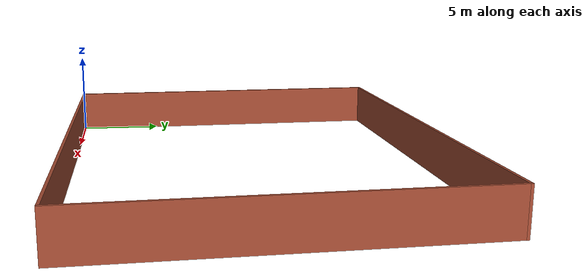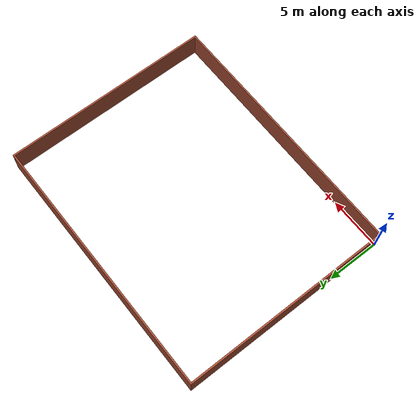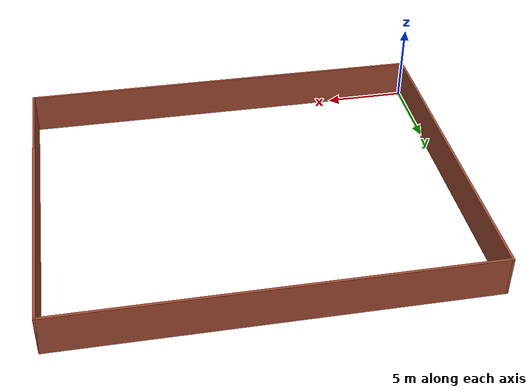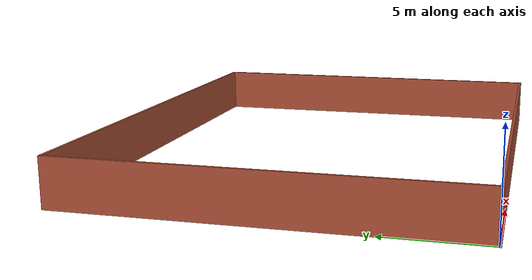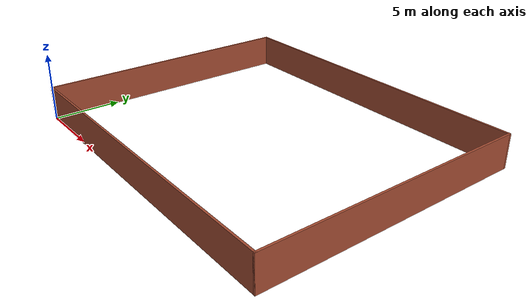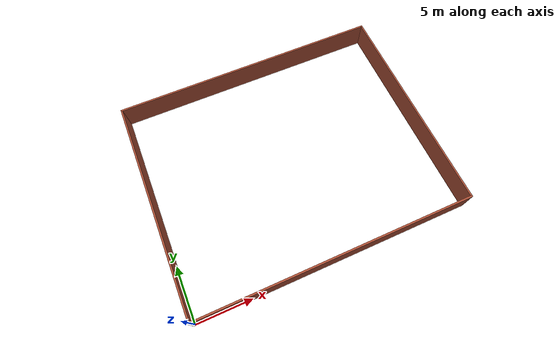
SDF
<?xml version='1.0'?>
<sdf version='1.6'>
  <model name='map'>
    <pose frame=''>12.5 10 0 0 -0 0</pose>
    <link name='Wall_1'>
      <collision name='Wall_1_Collision'>
        <geometry>
          <box>
            <size>25.15 0.15 2.5</size>
          </box>
        </geometry>
        <pose frame=''>0 0 1.25 0 -0 0</pose>
      </collision>
      <visual name='Wall_1_Visual'>
        <pose frame=''>0 0 1.25 0 -0 0</pose>
        <geometry>
          <box>
            <size>25.15 0.15 2.5</size>
          </box>
        </geometry>
        <material>
          <script>
            <uri>file://media/materials/scripts/gazebo.material</uri>
            <name>Gazebo/Bricks</name>
          </script>
          <ambient>1 1 1 1</ambient>
        </material>
        <meta>
          <layer>0</layer>
        </meta>
      </visual>
      <pose frame=''>0 -10 0 0 -0 0</pose>
    </link>
    <link name='Wall_2'>
      <collision name='Wall_2_Collision'>
        <geometry>
          <box>
            <size>20.15 0.15 2.5</size>
          </box>
        </geometry>
        <pose frame=''>0 0 1.25 0 -0 0</pose>
      </collision>
      <visual name='Wall_2_Visual'>
        <pose frame=''>0 0 1.25 0 -0 0</pose>
        <geometry>
          <box>
            <size>20.15 0.15 2.5</size>
          </box>
        </geometry>
        <material>
          <script>
            <uri>file://media/materials/scripts/gazebo.material</uri>
            <name>Gazebo/Bricks</name>
          </script>
          <ambient>1 1 1 1</ambient>
        </material>
        <meta>
          <layer>0</layer>
        </meta>
      </visual>
      <pose frame=''>12.5 0 0 0 -0 1.5708</pose>
    </link>
    <link name='Wall_4'>
      <collision name='Wall_4_Collision'>
        <geometry>
          <box>
            <size>20.15 0.15 2.5</size>
          </box>
        </geometry>
        <pose frame=''>0 0 1.25 0 -0 0</pose>
      </collision>
      <visual name='Wall_4_Visual'>
        <pose frame=''>0 0 1.25 0 -0 0</pose>
        <geometry>
          <box>
            <size>20.15 0.15 2.5</size>
          </box>
        </geometry>
        <material>
          <script>
            <uri>file://media/materials/scripts/gazebo.material</uri>
            <name>Gazebo/Bricks</name>
          </script>
          <ambient>1 1 1 1</ambient>
        </material>
        <meta>
          <layer>0</layer>
        </meta>
      </visual>
      <pose frame=''>-12.5 0 0 0 -0 1.5708</pose>
    </link>
    <link name='Wall_6'>
      <collision name='Wall_6_Collision'>
        <geometry>
          <box>
            <size>25.15 0.15 2.5</size>
          </box>
        </geometry>
        <pose frame=''>0 0 1.25 0 -0 0</pose>
      </collision>
      <visual name='Wall_6_Visual'>
        <pose frame=''>0 0 1.25 0 -0 0</pose>
        <geometry>
          <box>
            <size>25.15 0.15 2.5</size>
          </box>
        </geometry>
        <material>
          <script>
            <uri>file://media/materials/scripts/gazebo.material</uri>
            <name>Gazebo/Bricks</name>
          </script>
          <ambient>1 1 1 1</ambient>
        </material>
        <meta>
          <layer>0</layer>
        </meta>
      </visual>
      <pose frame=''>0 10 0 0 -0 0</pose>
    </link>
    <static>1</static>
  </model>
</sdf>
